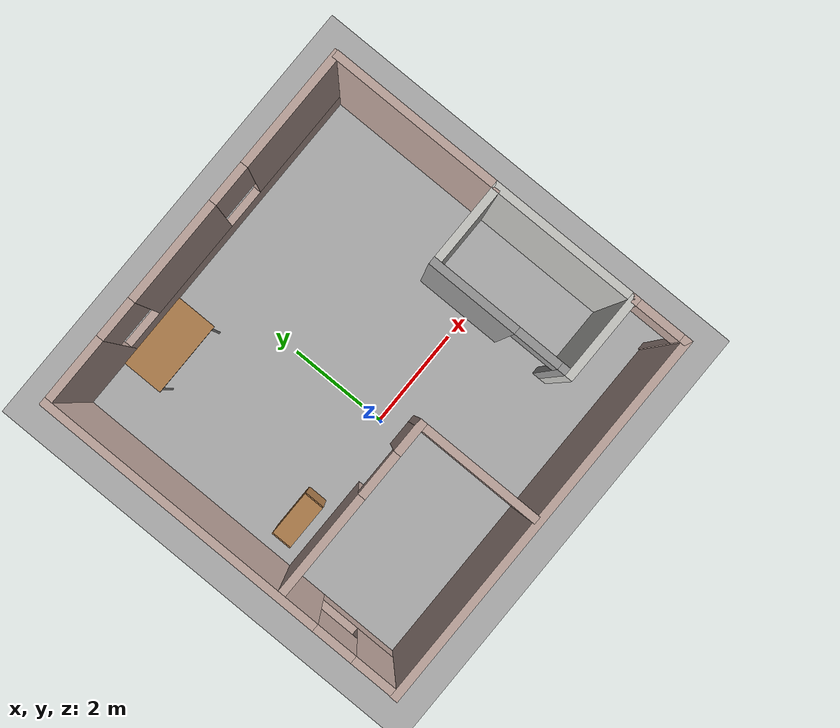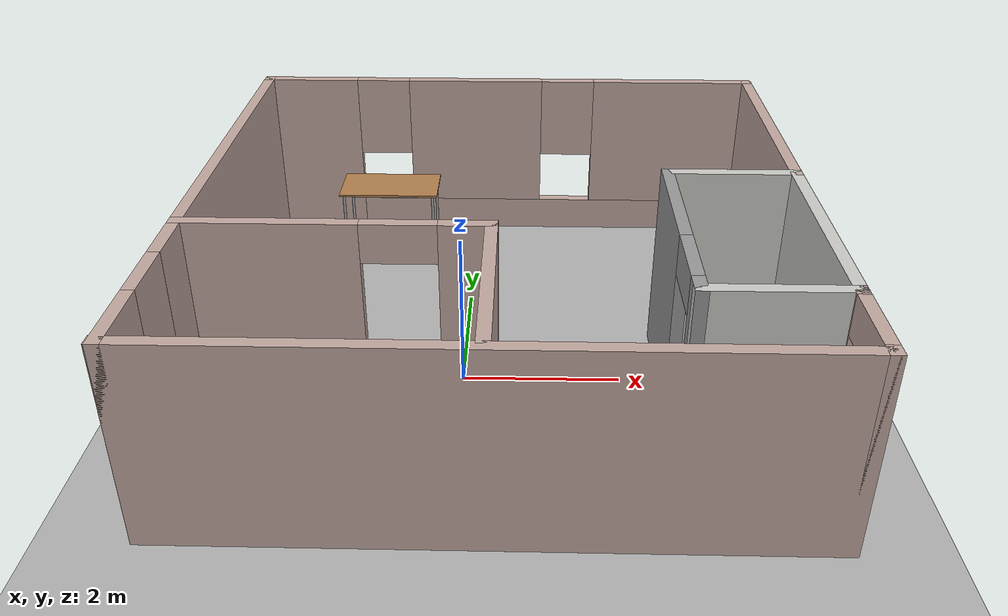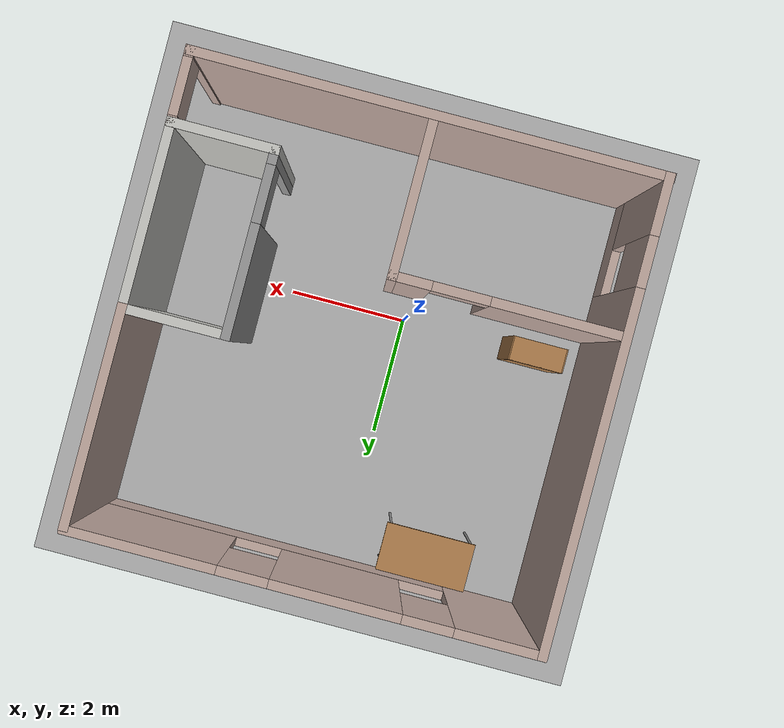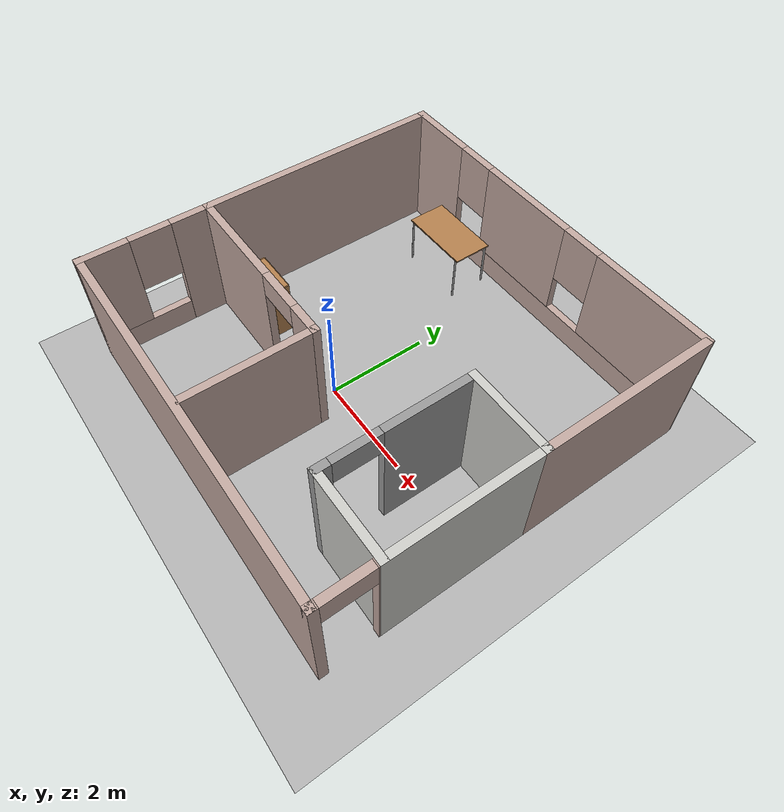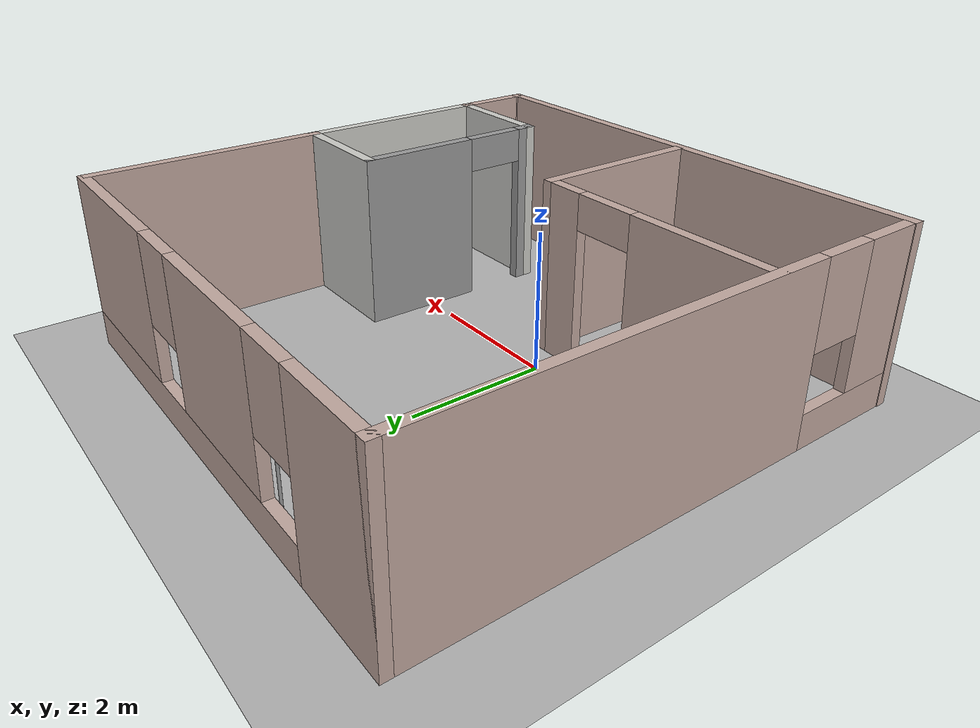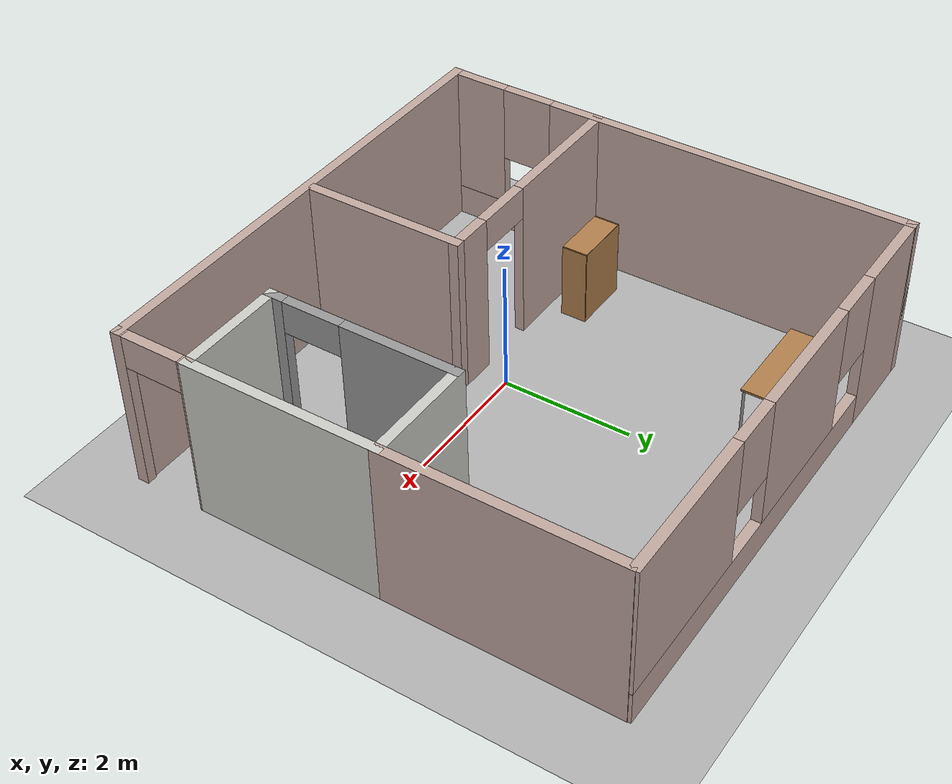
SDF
<sdf version="1.9">
 <world name="default">
  <gravity>0 0 -9.8</gravity>
  <magnetic_field>6e-06 2.3e-05 -4.2e-05</magnetic_field>
  <atmosphere type="adiabatic"/>
  <physics type="ode">
   <max_step_size>0.001</max_step_size>
   <real_time_factor>1</real_time_factor>
   <real_time_update_rate>1000</real_time_update_rate>
  </physics>
  <scene><ambient>0.4 0.4 0.4 1</ambient><background>0.7 0.7 0.7 1</background><shadows>true</shadows></scene>
  <model name="studio">
   <pose>0.465 0.715 0 0 -0 0</pose>
   <link name="Wall_0">
    <pose>-3.675 0 0 0 0 -1.5708</pose>
    <visual name="Wall_0_Visual_0">
     <pose>-0.8875 0 1.25 0 -0 0</pose>
     <geometry><box><size>5.725 0.15 2.5</size></box></geometry>
     <material>
      <script><uri>file://media/materials/scripts/gazebo.material</uri><name>Gazebo/Grey</name></script>
      <ambient>0.760784 0.662745 0.627451 1</ambient>
     </material>
     <meta><layer>0</layer></meta>
    </visual>
    <collision name="Wall_0_Collision_0">
     <geometry><box><size>5.725 0.15 2.5</size></box></geometry>
     <pose>-0.8875 0 1.25 0 -0 0</pose>
    </collision>
    <visual name="Wall_0_Visual_1">
     <pose>2.8625 0 0.25 0 -0 0</pose>
     <geometry><box><size>1.775 0.15 0.5</size></box></geometry>
     <material>
      <script><uri>file://media/materials/scripts/gazebo.material</uri><name>Gazebo/Grey</name></script>
      <ambient>0.760784 0.662745 0.627451 1</ambient>
     </material>
     <meta><layer>0</layer></meta>
    </visual>
    <collision name="Wall_0_Collision_1">
     <geometry><box><size>1.775 0.15 0.5</size></box></geometry>
     <pose>2.8625 0 0.25 0 -0 0</pose>
    </collision>
    <visual name="Wall_0_Visual_2">
     <pose>3.2625 0 1.5 0 -0 0</pose>
     <geometry><box><size>0.975 0.15 2</size></box></geometry>
     <material>
      <script><uri>file://media/materials/scripts/gazebo.material</uri><name>Gazebo/Grey</name></script>
      <ambient>0.760784 0.662745 0.627451 1</ambient>
     </material>
     <meta><layer>0</layer></meta>
    </visual>
    <collision name="Wall_0_Collision_2">
     <geometry><box><size>0.975 0.15 2</size></box></geometry>
     <pose>3.2625 0 1.5 0 -0 0</pose>
    </collision>
    <visual name="Wall_0_Visual_3">
     <pose>2.375 0 1.9 0 -0 0</pose>
     <geometry><box><size>0.8 0.15 1.2</size></box></geometry>
     <material>
      <script><uri>file://media/materials/scripts/gazebo.material</uri><name>Gazebo/Grey</name></script>
      <ambient>0.760784 0.662745 0.627451 1</ambient>
     </material>
     <meta><layer>0</layer></meta>
    </visual>
    <collision name="Wall_0_Collision_3">
     <geometry><box><size>0.8 0.15 1.2</size></box></geometry>
     <pose>2.375 0 1.9 0 -0 0</pose>
    </collision>
    <inertial>
     <mass>1</mass>
     <inertia><ixx>1</ixx><ixy>0</ixy><ixz>0</ixz><iyy>1</iyy><iyz>0</iyz><izz>1</izz></inertia>
    </inertial>
   </link>
   <link name="Wall_1">
    <collision name="Wall_1_Collision">
     <geometry><box><size>7.52 0.15 2.5</size></box></geometry>
     <pose>0 0 1.25 0 -0 0</pose>
    </collision>
    <visual name="Wall_1_Visual">
     <pose>0 0 1.25 0 -0 0</pose>
     <geometry><box><size>7.52 0.15 2.5</size></box></geometry>
     <material>
      <script><uri>file://media/materials/scripts/gazebo.material</uri><name>Gazebo/Grey</name></script>
      <ambient>0.760784 0.662745 0.627451 1</ambient>
     </material>
     <meta><layer>0</layer></meta>
    </visual>
    <pose>0 -3.675 0 0 -0 0</pose>
    <inertial>
     <mass>1</mass>
     <inertia><ixx>1</ixx><ixy>0</ixy><ixz>0</ixz><iyy>1</iyy><iyz>0</iyz><izz>1</izz></inertia>
    </inertial>
   </link>
   <link name="Wall_11">
    <collision name="Wall_11_Collision">
     <geometry><box><size>3.5 0.15 2.5</size></box></geometry>
     <pose>0 0 1.25 0 -0 0</pose>
    </collision>
    <visual name="Wall_11_Visual">
     <pose>0 0 1.25 0 -0 0</pose>
     <geometry><box><size>3.5 0.15 2.5</size></box></geometry>
     <material>
      <script><uri>file://media/materials/scripts/gazebo.material</uri><name>Gazebo/Grey</name></script>
      <ambient>0.760784 0.662745 0.627451 1</ambient>
     </material>
     <meta><layer>0</layer></meta>
    </visual>
    <pose>3.685 1.95 0 0 -0 1.5708</pose>
    <inertial>
     <mass>1</mass>
     <inertia><ixx>1</ixx><ixy>0</ixy><ixz>0</ixz><iyy>1</iyy><iyz>0</iyz><izz>1</izz></inertia>
    </inertial>
   </link>
   <link name="Wall_13">
    <pose>0 3.675 0 0 -0 0</pose>
    <visual name="Wall_13_Visual_0">
     <pose>-3.0275 0 1.25 0 -0 0</pose>
     <geometry><box><size>1.445 0.15 2.5</size></box></geometry>
     <material>
      <script><uri>file://media/materials/scripts/gazebo.material</uri><name>Gazebo/Grey</name></script>
      <ambient>0.760784 0.662745 0.627451 1</ambient>
     </material>
     <meta><layer>0</layer></meta>
    </visual>
    <collision name="Wall_13_Collision_0">
     <geometry><box><size>1.445 0.15 2.5</size></box></geometry>
     <pose>-3.0275 0 1.25 0 -0 0</pose>
    </collision>
    <visual name="Wall_13_Visual_1">
     <pose>0.7225 0 0.25 0 -0 0</pose>
     <geometry><box><size>6.055 0.15 0.5</size></box></geometry>
     <material>
      <script><uri>file://media/materials/scripts/gazebo.material</uri><name>Gazebo/Grey</name></script>
      <ambient>0.760784 0.662745 0.627451 1</ambient>
     </material>
     <meta><layer>0</layer></meta>
    </visual>
    <collision name="Wall_13_Collision_1">
     <geometry><box><size>6.055 0.15 0.5</size></box></geometry>
     <pose>0.7225 0 0.25 0 -0 0</pose>
    </collision>
    <visual name="Wall_13_Visual_2">
     <pose>-0.48 0 1.5 0 -0 0</pose>
     <geometry><box><size>2.05 0.15 2</size></box></geometry>
     <material>
      <script><uri>file://media/materials/scripts/gazebo.material</uri><name>Gazebo/Grey</name></script>
      <ambient>0.760784 0.662745 0.627451 1</ambient>
     </material>
     <meta><layer>0</layer></meta>
    </visual>
    <collision name="Wall_13_Collision_2">
     <geometry><box><size>2.05 0.15 2</size></box></geometry>
     <pose>-0.48 0 1.5 0 -0 0</pose>
    </collision>
    <visual name="Wall_13_Visual_3">
     <pose>2.5475 0 1.5 0 -0 0</pose>
     <geometry><box><size>2.405 0.15 2</size></box></geometry>
     <material>
      <script><uri>file://media/materials/scripts/gazebo.material</uri><name>Gazebo/Grey</name></script>
      <ambient>0.760784 0.662745 0.627451 1</ambient>
     </material>
     <meta><layer>0</layer></meta>
    </visual>
    <collision name="Wall_13_Collision_3">
     <geometry><box><size>2.405 0.15 2</size></box></geometry>
     <pose>2.5475 0 1.5 0 -0 0</pose>
    </collision>
    <visual name="Wall_13_Visual_4">
     <pose>-1.905 0 1.9 0 -0 0</pose>
     <geometry><box><size>0.8 0.15 1.2</size></box></geometry>
     <material>
      <script><uri>file://media/materials/scripts/gazebo.material</uri><name>Gazebo/Grey</name></script>
      <ambient>0.760784 0.662745 0.627451 1</ambient>
     </material>
     <meta><layer>0</layer></meta>
    </visual>
    <collision name="Wall_13_Collision_4">
     <geometry><box><size>0.8 0.15 1.2</size></box></geometry>
     <pose>-1.905 0 1.9 0 -0 0</pose>
    </collision>
    <visual name="Wall_13_Visual_5">
     <pose>0.945 0 1.9 0 -0 0</pose>
     <geometry><box><size>0.8 0.15 1.2</size></box></geometry>
     <material>
      <script><uri>file://media/materials/scripts/gazebo.material</uri><name>Gazebo/Grey</name></script>
      <ambient>0.760784 0.662745 0.627451 1</ambient>
     </material>
     <meta><layer>0</layer></meta>
    </visual>
    <collision name="Wall_13_Collision_5">
     <geometry><box><size>0.8 0.15 1.2</size></box></geometry>
     <pose>0.945 0 1.9 0 -0 0</pose>
    </collision>
    <inertial>
     <mass>1</mass>
     <inertia><ixx>1</ixx><ixy>0</ixy><ixz>0</ixz><iyy>1</iyy><iyz>0</iyz><izz>1</izz></inertia>
    </inertial>
   </link>
   <link name="Wall_15">
    <collision name="Wall_15_Collision">
     <geometry><box><size>2.5 0.15 2.5</size></box></geometry>
     <pose>0 0 1.25 0 -0 0</pose>
    </collision>
    <visual name="Wall_15_Visual">
     <pose>0 0 1.25 0 -0 0</pose>
     <geometry><box><size>2.5 0.15 2.5</size></box></geometry>
     <material>
      <script><uri>file://media/materials/scripts/gazebo.material</uri><name>Gazebo/Grey</name></script>
      <ambient>0.760784 0.662745 0.627451 1</ambient>
     </material>
     <meta><layer>0</layer></meta>
    </visual>
    <pose>-0.075 -2.39 0 0 -0 1.5708</pose>
    <inertial>
     <mass>1</mass>
     <inertia><ixx>1</ixx><ixy>0</ixy><ixz>0</ixz><iyy>1</iyy><iyz>0</iyz><izz>1</izz></inertia>
    </inertial>
   </link>
   <link name="Wall_17">
    <pose>-1.875 -1.215 0 0 -0 3.14159</pose>
    <visual name="Wall_17_Visual_0">
     <pose>-1.5325 0 1.25 0 -0 0</pose>
     <geometry><box><size>0.685 0.15 2.5</size></box></geometry>
     <material>
      <script><uri>file://media/materials/scripts/gazebo.material</uri><name>Gazebo/Grey</name></script>
      <ambient>0.760784 0.662745 0.627451 1</ambient>
     </material>
     <meta><layer>0</layer></meta>
    </visual>
    <collision name="Wall_17_Collision_0">
     <geometry><box><size>0.685 0.15 2.5</size></box></geometry>
     <pose>-1.5325 0 1.25 0 -0 0</pose>
    </collision>
    <visual name="Wall_17_Visual_1">
     <pose>0.7925 0 1.25 0 -0 0</pose>
     <geometry><box><size>2.165 0.15 2.5</size></box></geometry>
     <material>
      <script><uri>file://media/materials/scripts/gazebo.material</uri><name>Gazebo/Grey</name></script>
      <ambient>0.760784 0.662745 0.627451 1</ambient>
     </material>
     <meta><layer>0</layer></meta>
    </visual>
    <collision name="Wall_17_Collision_1">
     <geometry><box><size>2.165 0.15 2.5</size></box></geometry>
     <pose>0.7925 0 1.25 0 -0 0</pose>
    </collision>
    <visual name="Wall_17_Visual_2">
     <pose>-0.74 0 2.25 0 -0 0</pose>
     <geometry><box><size>0.9 0.15 0.5</size></box></geometry>
     <material>
      <script><uri>file://media/materials/scripts/gazebo.material</uri><name>Gazebo/Grey</name></script>
      <ambient>0.760784 0.662745 0.627451 1</ambient>
     </material>
     <meta><layer>0</layer></meta>
    </visual>
    <collision name="Wall_17_Collision_2">
     <geometry><box><size>0.9 0.15 0.5</size></box></geometry>
     <pose>-0.74 0 2.25 0 -0 0</pose>
    </collision>
    <inertial>
     <mass>1</mass>
     <inertia><ixx>1</ixx><ixy>0</ixy><ixz>0</ixz><iyy>1</iyy><iyz>0</iyz><izz>1</izz></inertia>
    </inertial>
   </link>
   <link name="Wall_2">
    <pose>3.685 -3.125 0 0 -0 1.5708</pose>
    <visual name="Wall_2_Visual_0">
     <pose>-0.5375 0 1.25 0 -0 0</pose>
     <geometry><box><size>0.175 0.15 2.5</size></box></geometry>
     <material>
      <script><uri>file://media/materials/scripts/gazebo.material</uri><name>Gazebo/Grey</name></script>
      <ambient>0.760784 0.662745 0.627451 1</ambient>
     </material>
     <meta><layer>0</layer></meta>
    </visual>
    <collision name="Wall_2_Collision_0">
     <geometry><box><size>0.175 0.15 2.5</size></box></geometry>
     <pose>-0.5375 0 1.25 0 -0 0</pose>
    </collision>
    <visual name="Wall_2_Visual_1">
     <pose>0.5375 0 1.25 0 -0 0</pose>
     <geometry><box><size>0.175 0.15 2.5</size></box></geometry>
     <material>
      <script><uri>file://media/materials/scripts/gazebo.material</uri><name>Gazebo/Grey</name></script>
      <ambient>0.760784 0.662745 0.627451 1</ambient>
     </material>
     <meta><layer>0</layer></meta>
    </visual>
    <collision name="Wall_2_Collision_1">
     <geometry><box><size>0.175 0.15 2.5</size></box></geometry>
     <pose>0.5375 0 1.25 0 -0 0</pose>
    </collision>
    <visual name="Wall_2_Visual_2">
     <pose>-0 0 2.25 0 -0 0</pose>
     <geometry><box><size>0.9 0.15 0.5</size></box></geometry>
     <material>
      <script><uri>file://media/materials/scripts/gazebo.material</uri><name>Gazebo/Grey</name></script>
      <ambient>0.760784 0.662745 0.627451 1</ambient>
     </material>
     <meta><layer>0</layer></meta>
    </visual>
    <collision name="Wall_2_Collision_2">
     <geometry><box><size>0.9 0.15 0.5</size></box></geometry>
     <pose>-0 0 2.25 0 -0 0</pose>
    </collision>
    <inertial>
     <mass>1</mass>
     <inertia><ixx>1</ixx><ixy>0</ixy><ixz>0</ixz><iyy>1</iyy><iyz>0</iyz><izz>1</izz></inertia>
    </inertial>
   </link>
   <link name="Wall_4">
    <collision name="Wall_4_Collision">
     <geometry><box><size>1.75 0.15 2.5</size></box></geometry>
     <pose>0 0 1.25 0 -0 0</pose>
    </collision>
    <visual name="Wall_4_Visual">
     <pose>0 0 1.25 0 -0 0</pose>
     <geometry><box><size>1.75 0.15 2.5</size></box></geometry>
     <material>
      <script><uri>file://media/materials/scripts/gazebo.material</uri><name>Gazebo/CeilingTiled</name></script>
      <ambient>1 1 1 1</ambient>
     </material>
     <meta><layer>0</layer></meta>
    </visual>
    <pose>2.885 -2.575 0 0 -0 3.14159</pose>
    <inertial>
     <mass>1</mass>
     <inertia><ixx>1</ixx><ixy>0</ixy><ixz>0</ixz><iyy>1</iyy><iyz>0</iyz><izz>1</izz></inertia>
    </inertial>
   </link>
   <link name="Wall_6">
    <pose>2.085 -1.15 0 0 -0 1.5708</pose>
    <visual name="Wall_6_Visual_0">
     <pose>-1.3475 0 1.25 0 -0 0</pose>
     <geometry><box><size>0.305 0.15 2.5</size></box></geometry>
     <material>
      <script><uri>file://media/materials/scripts/gazebo.material</uri><name>Gazebo/Grey</name></script>
      <ambient>1 1 1 1</ambient>
     </material>
     <meta><layer>0</layer></meta>
    </visual>
    <collision name="Wall_6_Collision_0">
     <geometry><box><size>0.305 0.15 2.5</size></box></geometry>
     <pose>-1.3475 0 1.25 0 -0 0</pose>
    </collision>
    <visual name="Wall_6_Visual_1">
     <pose>0.6025 0 1.25 0 -0 0</pose>
     <geometry><box><size>1.795 0.15 2.5</size></box></geometry>
     <material>
      <script><uri>file://media/materials/scripts/gazebo.material</uri><name>Gazebo/Grey</name></script>
      <ambient>1 1 1 1</ambient>
     </material>
     <meta><layer>0</layer></meta>
    </visual>
    <collision name="Wall_6_Collision_1">
     <geometry><box><size>1.795 0.15 2.5</size></box></geometry>
     <pose>0.6025 0 1.25 0 -0 0</pose>
    </collision>
    <visual name="Wall_6_Visual_2">
     <pose>-0.745 0 2.25 0 -0 0</pose>
     <geometry><box><size>0.9 0.15 0.5</size></box></geometry>
     <material>
      <script><uri>file://media/materials/scripts/gazebo.material</uri><name>Gazebo/Grey</name></script>
      <ambient>1 1 1 1</ambient>
     </material>
     <meta><layer>0</layer></meta>
    </visual>
    <collision name="Wall_6_Collision_2">
     <geometry><box><size>0.9 0.15 0.5</size></box></geometry>
     <pose>-0.745 0 2.25 0 -0 0</pose>
    </collision>
    <inertial>
     <mass>1</mass>
     <inertia><ixx>1</ixx><ixy>0</ixy><ixz>0</ixz><iyy>1</iyy><iyz>0</iyz><izz>1</izz></inertia>
    </inertial>
   </link>
   <link name="Wall_8">
    <collision name="Wall_8_Collision">
     <geometry><box><size>3 0.15 2.5</size></box></geometry>
     <pose>0 0 1.25 0 -0 0</pose>
    </collision>
    <visual name="Wall_8_Visual">
     <pose>0 0 1.25 0 -0 0</pose>
     <geometry><box><size>3 0.15 2.5</size></box></geometry>
     <material>
      <script><uri>file://media/materials/scripts/gazebo.material</uri><name>Gazebo/CeilingTiled</name></script>
      <ambient>0.760784 0.662745 0.627451 1</ambient>
     </material>
     <meta><layer>0</layer></meta>
    </visual>
    <pose>3.685 -1.15 0 0 -0 1.5708</pose>
    <inertial>
     <mass>1</mass>
     <inertia><ixx>1</ixx><ixy>0</ixy><ixz>0</ixz><iyy>1</iyy><iyz>0</iyz><izz>1</izz></inertia>
    </inertial>
   </link>
   <link name="Wall_9">
    <collision name="Wall_9_Collision">
     <geometry><box><size>1.75 0.15 2.5</size></box></geometry>
     <pose>0 0 1.25 0 -0 0</pose>
    </collision>
    <visual name="Wall_9_Visual">
     <pose>0 0 1.25 0 -0 0</pose>
     <geometry><box><size>1.75 0.15 2.5</size></box></geometry>
     <material>
      <script><uri>file://media/materials/scripts/gazebo.material</uri><name>Gazebo/CeilingTiled</name></script>
      <ambient>1 1 1 1</ambient>
     </material>
     <meta><layer>0</layer></meta>
    </visual>
    <pose>2.885 0.275 0 0 -0 3.14159</pose>
    <inertial>
     <mass>1</mass>
     <inertia><ixx>1</ixx><ixy>0</ixy><ixz>0</ixz><iyy>1</iyy><iyz>0</iyz><izz>1</izz></inertia>
    </inertial>
   </link>
   <static>true</static>
  </model>
  <model name="ground_plane">
   <static>true</static>
   <link name="link">
    <collision name="collision">
     <geometry><plane><normal>0 0 1</normal><size>100 100</size></plane></geometry>
     <surface><friction><ode><mu>100</mu><mu2>50</mu2></ode></friction></surface>
    </collision>
    <visual name="visual">
     <cast_shadows>false</cast_shadows>
     <geometry><plane><normal>0 0 1</normal><size>100 100</size></plane></geometry>
     <material>
      <ambient>0.3 0.3 0.3 1</ambient>
      <diffuse>0.7 0.7 0.7 1</diffuse>
      <specular>0.01 0.01 0.01 1</specular>
     </material>
    </visual>
    <inertial>
     <mass>1</mass>
     <inertia><ixx>1</ixx><ixy>0</ixy><ixz>0</ixz><iyy>1</iyy><iyz>0</iyz><izz>1</izz></inertia>
    </inertial>
   </link>
   <pose>0.712672 1.58432 0 0 -0 0</pose>
  </model>
  <model name="Table">
   <static>true</static>
   <link name="link">
    <collision name="surface">
     <pose>0 0 1.0 0 0 0</pose>
     <geometry><box><size>1.5 0.8 0.03</size></box></geometry>
     <surface><friction><ode><mu>0.59999999999999998</mu><mu2>0.59999999999999998</mu2></ode></friction></surface>
    </collision>
    <visual name="visual1">
     <pose>0 0 1.0 0 0 0</pose>
     <geometry><box><size>1.5 0.8 0.03</size></box></geometry>
     <material>
      <diffuse>1 1 1 1</diffuse>
      <script><uri>file://media/materials/scripts/gazebo.material</uri><name>Gazebo/Wood</name></script>
      <pbr>
       <metal>
        <albedo_map>https://fuel.gazebosim.org/1.0/openrobotics/models/table/4/files/Table_Diffuse.jpg</albedo_map>
       </metal>
      </pbr>
     </material>
    </visual>
    <collision name="front_left_leg">
     <pose>0.68 0.38 0.5 0 0 0</pose>
     <geometry><cylinder><radius>0.02</radius><length>1</length></cylinder></geometry>
    </collision>
    <visual name="front_left_leg">
     <pose>0.68 0.38 0.5 0 0 0</pose>
     <geometry><cylinder><radius>0.02</radius><length>1</length></cylinder></geometry>
     <material>
      <diffuse>0.5 0.5 0.5 1</diffuse>
      <script><uri>file://media/materials/scripts/gazebo.material</uri><name>Gazebo/Grey</name></script>
     </material>
    </visual>
    <collision name="front_right_leg">
     <pose>0.68 -0.38 0.5 0 0 0</pose>
     <geometry><cylinder><radius>0.02</radius><length>1</length></cylinder></geometry>
    </collision>
    <visual name="front_right_leg">
     <pose>0.68 -0.38 0.5 0 0 0</pose>
     <geometry><cylinder><radius>0.02</radius><length>1</length></cylinder></geometry>
     <material>
      <diffuse>0.5 0.5 0.5 1</diffuse>
      <script><uri>file://media/materials/scripts/gazebo.material</uri><name>Gazebo/Grey</name></script>
     </material>
    </visual>
    <collision name="back_right_leg">
     <pose>-0.68 -0.38 0.5 0 0 0</pose>
     <geometry><cylinder><radius>0.02</radius><length>1</length></cylinder></geometry>
    </collision>
    <visual name="back_right_leg">
     <pose>-0.68 -0.38 0.5 0 0 0</pose>
     <geometry><cylinder><radius>0.02</radius><length>1</length></cylinder></geometry>
     <material>
      <diffuse>0.5 0.5 0.5 1</diffuse>
      <script><uri>file://media/materials/scripts/gazebo.material</uri><name>Gazebo/Grey</name></script>
     </material>
    </visual>
    <collision name="back_left_leg">
     <pose>-0.68 0.38 0.5 0 0 0</pose>
     <geometry><cylinder><radius>0.02</radius><length>1</length></cylinder></geometry>
    </collision>
    <visual name="back_left_leg">
     <pose>-0.68 0.38 0.5 0 0 0</pose>
     <geometry><cylinder><radius>0.02</radius><length>1</length></cylinder></geometry>
     <material>
      <diffuse>0.5 0.5 0.5 1</diffuse>
      <script><uri>file://media/materials/scripts/gazebo.material</uri><name>Gazebo/Grey</name></script>
     </material>
    </visual>
    <inertial>
     <mass>1</mass>
     <inertia><ixx>1</ixx><ixy>0</ixy><ixz>0</ixz><iyy>1</iyy><iyz>0</iyz><izz>1</izz></inertia>
    </inertial>
   </link>
   <pose>-1.32896 3.71588 0 0 -0 0</pose>
  </model>
  <model name="Bookshelf">
   <static>true</static>
   <link name="link">
    <inertial>
     <mass>1</mass>
     <inertia><ixx>1</ixx><ixy>0</ixy><ixz>0</ixz><iyy>1</iyy><iyz>0</iyz><izz>1</izz></inertia>
    </inertial>
    <collision name="back">
     <pose>0 0.005 0.6 0 0 0</pose>
     <geometry><box><size>0.9 0.01 1.2</size></box></geometry>
    </collision>
    <visual name="visual1">
     <pose>0 0.005 0.6 0 0 0</pose>
     <geometry><box><size>0.9 0.01 1.2</size></box></geometry>
     <material>
      <diffuse>1 1 1 1</diffuse>
      <script><uri>file://media/materials/scripts/gazebo.material</uri><name>Gazebo/Wood</name></script>
      <pbr>
       <metal>
        <albedo_map>https://fuel.gazebosim.org/1.0/openrobotics/models/bookshelf/4/files/bookshelf_diffuse.jpg</albedo_map>
       </metal>
      </pbr>
     </material>
    </visual>
    <collision name="left_side">
     <pose>0.45 -0.195 0.6 0 0 0</pose>
     <geometry><box><size>0.02 0.4 1.2</size></box></geometry>
    </collision>
    <visual name="visual2">
     <pose>0.45 -0.195 0.6 0 0 0</pose>
     <geometry><box><size>0.02 0.4 1.2</size></box></geometry>
     <material>
      <diffuse>1 1 1 1</diffuse>
      <script><uri>file://media/materials/scripts/gazebo.material</uri><name>Gazebo/Wood</name></script>
      <pbr>
       <metal>
        <albedo_map>https://fuel.gazebosim.org/1.0/openrobotics/models/bookshelf/4/files/bookshelf_diffuse.jpg</albedo_map>
       </metal>
      </pbr>
     </material>
    </visual>
    <collision name="right_side">
     <pose>-0.45 -0.195 0.6 0 0 0</pose>
     <geometry><box><size>0.02 0.4 1.2</size></box></geometry>
    </collision>
    <visual name="visual3">
     <pose>-0.45 -0.195 0.6 0 0 0</pose>
     <geometry><box><size>0.02 0.4 1.2</size></box></geometry>
     <material>
      <diffuse>1 1 1 1</diffuse>
      <script><uri>file://media/materials/scripts/gazebo.material</uri><name>Gazebo/Wood</name></script>
      <pbr>
       <metal>
        <albedo_map>https://fuel.gazebosim.org/1.0/openrobotics/models/bookshelf/4/files/bookshelf_diffuse.jpg</albedo_map>
       </metal>
      </pbr>
     </material>
    </visual>
    <collision name="bottom">
     <pose>0 -0.195 0.03 0 0 0</pose>
     <geometry><box><size>0.88 0.4 0.06</size></box></geometry>
    </collision>
    <visual name="visual4">
     <pose>0 -0.195 0.03 0 0 0</pose>
     <geometry><box><size>0.88 0.4 0.06</size></box></geometry>
     <material>
      <diffuse>1 1 1 1</diffuse>
      <script><uri>file://media/materials/scripts/gazebo.material</uri><name>Gazebo/Wood</name></script>
      <pbr>
       <metal>
        <albedo_map>https://fuel.gazebosim.org/1.0/openrobotics/models/bookshelf/4/files/bookshelf_diffuse.jpg</albedo_map>
       </metal>
      </pbr>
     </material>
    </visual>
    <collision name="top">
     <pose>0 -0.195 1.19 0 0 0</pose>
     <geometry><box><size>0.88 0.4 0.02</size></box></geometry>
    </collision>
    <visual name="visual5">
     <pose>0 -0.195 1.19 0 0 0</pose>
     <geometry><box><size>0.88 0.4 0.02</size></box></geometry>
     <material>
      <diffuse>1 1 1 1</diffuse>
      <script><uri>file://media/materials/scripts/gazebo.material</uri><name>Gazebo/Wood</name></script>
      <pbr>
       <metal>
        <albedo_map>https://fuel.gazebosim.org/1.0/openrobotics/models/bookshelf/4/files/bookshelf_diffuse.jpg</albedo_map>
       </metal>
      </pbr>
     </material>
    </visual>
    <collision name="low_shelf">
     <pose>0 -0.195 0.43 0 0 0</pose>
     <geometry><box><size>0.88 0.4 0.02</size></box></geometry>
    </collision>
    <visual name="visual6">
     <pose>0 -0.195 0.43 0 0 0</pose>
     <geometry><box><size>0.88 0.4 0.02</size></box></geometry>
     <material>
      <diffuse>1 1 1 1</diffuse>
      <script><uri>file://media/materials/scripts/gazebo.material</uri><name>Gazebo/Wood</name></script>
      <pbr>
       <metal>
        <albedo_map>https://fuel.gazebosim.org/1.0/openrobotics/models/bookshelf/4/files/bookshelf_diffuse.jpg</albedo_map>
       </metal>
      </pbr>
     </material>
    </visual>
    <collision name="high_shelf">
     <pose>0 -0.195 0.8 0 0 0</pose>
     <geometry><box><size>0.88 0.4 0.02</size></box></geometry>
    </collision>
    <visual name="visual7">
     <pose>0 -0.195 0.8 0 0 0</pose>
     <geometry><box><size>0.88 0.4 0.02</size></box></geometry>
     <material>
      <diffuse>1 1 1 1</diffuse>
      <script><uri>file://media/materials/scripts/gazebo.material</uri><name>Gazebo/Wood</name></script>
      <pbr>
       <metal>
        <albedo_map>https://fuel.gazebosim.org/1.0/openrobotics/models/bookshelf/4/files/bookshelf_diffuse.jpg</albedo_map>
       </metal>
      </pbr>
     </material>
    </visual>
   </link>
   <pose>-2.23859 0.213835 0 0 -0 0</pose>
  </model>
  <light name="sun" type="directional">
   <pose>1.15973 2.10104 10 0 -0 0</pose>
   <intensity>1</intensity>
   <direction>-0.5 0.1 -0.9</direction>
   <diffuse>0.8 0.8 0.8 1</diffuse>
   <specular>0.2 0.2 0.2 1</specular>
   <attenuation>
    <range>1000</range>
    <linear>0.01</linear>
    <constant>0.90000000000000002</constant>
    <quadratic>0.001</quadratic>
   </attenuation>
   <spot><inner_angle>0</inner_angle><outer_angle>0</outer_angle><falloff>0</falloff></spot>
  </light>
 </world>
</sdf>
